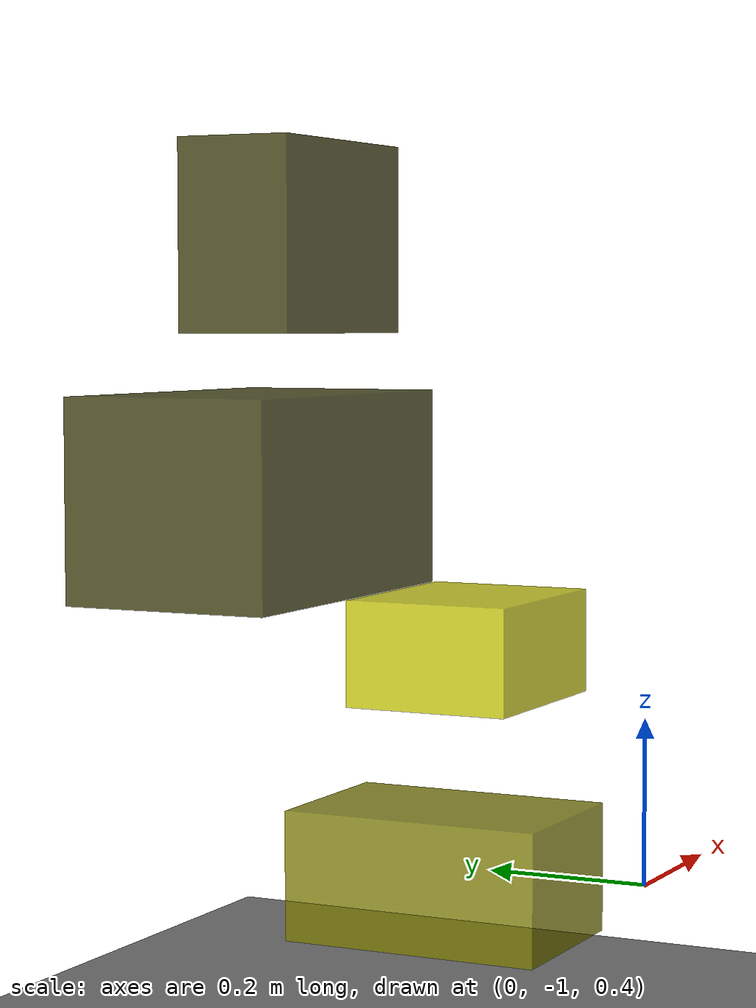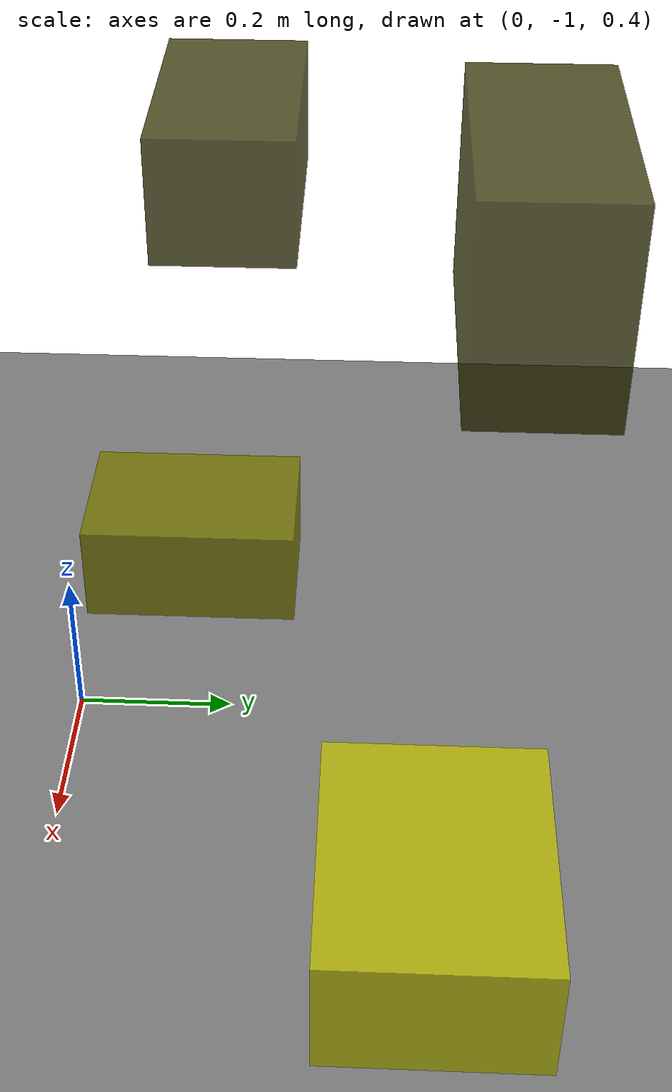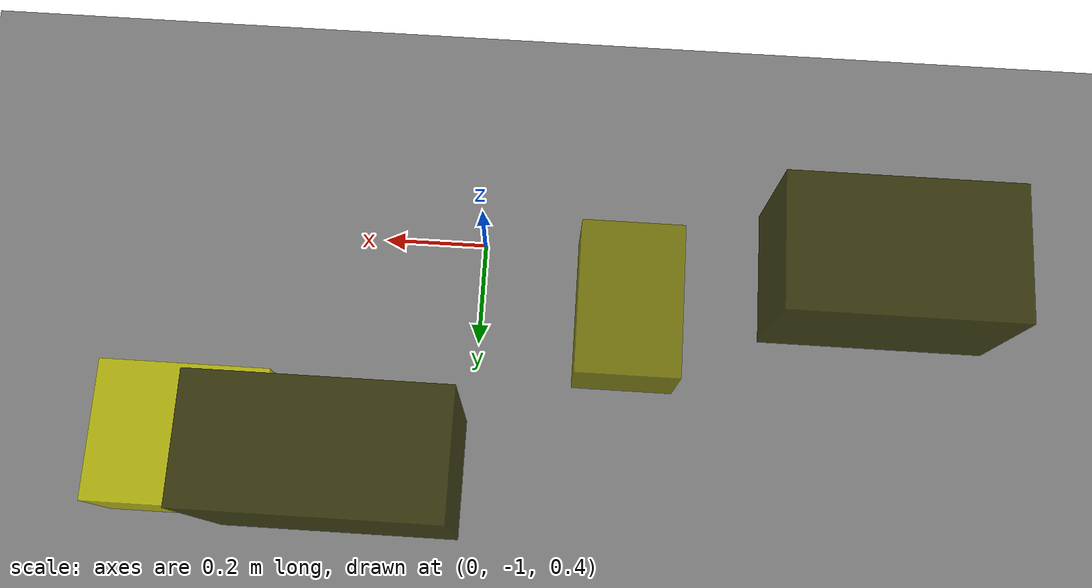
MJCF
<?xml version="1.0"?>
<mujoco model="obstacle_scene">
  <compiler angle="radian" coordinate="local"/>
  <option timestep="0.001" gravity="0 0 -9.81"/>

  <asset>
    <material name="obstacle_mat" rgba="0.8 0.8 0.0 0.8"/>
    <material name="ground_mat" rgba="0.5 0.5 0.5 1"/>
  </asset>

  <worldbody>
    <!-- Ground plane -->
    <geom name="ground" type="plane" size="3 3 0.1" material="ground_mat"/>

    <!-- Obstacles -->
    <body name="obstacle_0" pos="0.125354 -0.456558 1.177169">
      <geom name="obs_0" type="box" size="0.154360 0.078220 0.123682" rgba="0.2 0.2 0.0 0.8"/>
    </body>
    <body name="obstacle_1" pos="-0.284166 -0.873119 0.461005">
      <geom name="obs_1" type="box" size="0.098079 0.148378 0.072321" rgba="0.5 0.5 0.0 0.8"/>
    </body>
    <body name="obstacle_2" pos="0.480952 -0.545337 0.604762">
      <geom name="obs_2" type="box" size="0.146107 0.120912 0.075001" rgba="0.8 0.8 0.0 0.8"/>
    </body>
    <body name="obstacle_3" pos="-0.640991 -0.838774 0.901997">
      <geom name="obs_3" type="box" size="0.176516 0.105827 0.098244" rgba="0.2 0.2 0.0 0.8"/>
    </body>
  </worldbody>
</mujoco>
